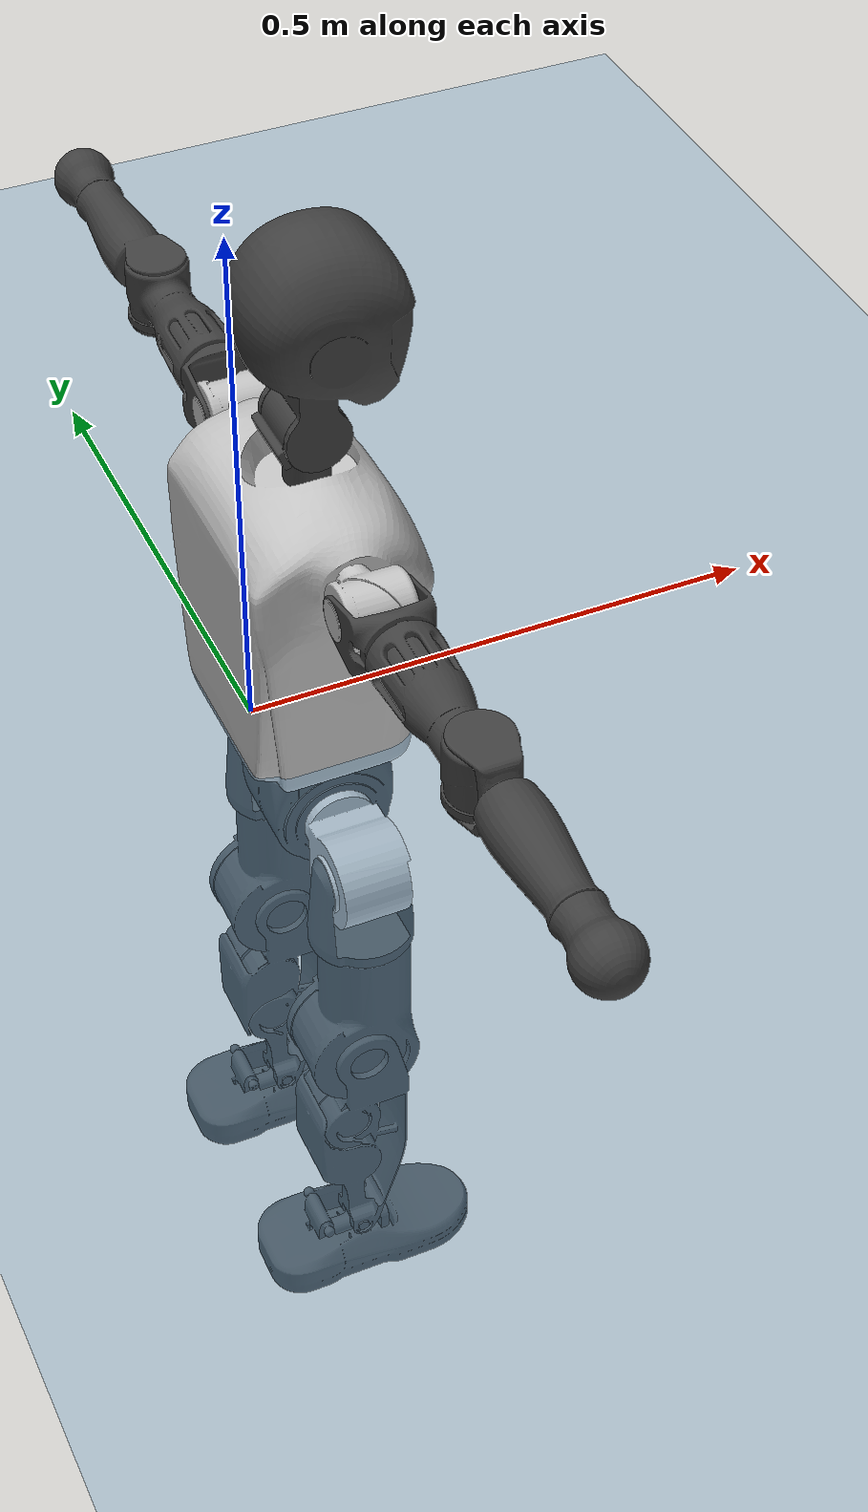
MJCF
<mujoco model="T1">
  <compiler angle="radian" assetdir="assets" balanceinertia="true" inertiafromgeom="false"/>

  <option timestep="0.005" density="1.2" viscosity="2e-05"/>

  <size nkey="1"/>

  <visual>
    <quality shadowsize="8192"/>
    <map shadowclip="0.5"/>
  </visual>

  <default>
    <default class="/">
      <joint armature="0.01" damping="0.01" frictionloss="0.1"/>
      <geom contype="0" conaffinity="0" group="1" solref="-1000 -80"/>
      <site size="0.01 0.005 0.005" group="5"/>
      <general forcelimited="true" biastype="affine" gainprm="25" biasprm="0 -25 -0.6"/>
      <default class="t1">
        <geom rgba="0.25 0.25 0.25 1"/>
        <default class="visual">
          <geom type="mesh" group="2"/>
        </default>
        <default class="collision">
          <geom group="3"/>
        </default>
        <default class="foot">
          <geom size="0.1115 0.05 0.015" type="box" condim="6" group="4" priority="1" solimp="0.015 1 0.015"/>
        </default>
        <default class="reward_collision_sphere">
          <geom group="5" rgba="1 0 0 1"/>
        </default>
      </default>
    </default>
  </default>

  <asset>
    <texture type="skybox" colorspace="auto" name="//unnamed_texture_0" builtin="gradient" rgb1="0.95 0.95 0.95" rgb2="0.95 0.95 0.95" width="100" height="600"/>
    <texture type="2d" colorspace="auto" name="texplane" builtin="checker" rgb1="0.345 0.575 0.748" rgb2="0.345 0.575 0.748" markrgb="1 1 1" width="512" height="512"/>
    <material name="MatPlane" class="/" texture="texplane" texuniform="true" texrepeat="2 2" specular="0.9"/>
    <mesh name="Trunk" class="/" file="Trunk.stl"/>
    <mesh name="H1" class="/" file="H1.stl"/>
    <mesh name="H2" class="/" file="H2.stl"/>
    <mesh name="AL1" class="/" file="AL1.stl"/>
    <mesh name="AL2" class="/" file="AL2.stl"/>
    <mesh name="AL3" class="/" file="AL3.stl"/>
    <mesh name="left_hand_link" class="/" file="left_hand_link.stl"/>
    <mesh name="AR1" class="/" file="AR1.stl"/>
    <mesh name="AR2" class="/" file="AR2.stl"/>
    <mesh name="AR3" class="/" file="AR3.stl"/>
    <mesh name="right_hand_link" class="/" file="right_hand_link.stl"/>
    <mesh name="Waist" class="/" file="Waist.stl"/>
    <mesh name="Hip_Pitch_Left" class="/" file="Hip_Pitch_Left.stl"/>
    <mesh name="Hip_Roll_Left" class="/" file="Hip_Roll_Left.stl"/>
    <mesh name="Hip_Yaw_Left" class="/" file="Hip_Yaw_Left.stl"/>
    <mesh name="Shank_Left" class="/" file="Shank_Left.stl"/>
    <mesh name="Ankle_Cross_Left" class="/" file="Ankle_Cross_Left.stl"/>
    <mesh name="left_foot_link" class="/" file="left_foot_link.stl"/>
    <mesh name="Hip_Pitch_Right" class="/" file="Hip_Pitch_Right.stl"/>
    <mesh name="Hip_Roll_Right" class="/" file="Hip_Roll_Right.stl"/>
    <mesh name="Hip_Yaw_Right" class="/" file="Hip_Yaw_Right.stl"/>
    <mesh name="Shank_Right" class="/" file="Shank_Right.stl"/>
    <mesh name="Ankle_Cross_Right" class="/" file="Ankle_Cross_Right.stl"/>
    <mesh name="right_foot_link" class="/" file="right_foot_link.stl"/>
  </asset>

  <worldbody>
    <geom name="floor" class="/" size="100 100 0.125" type="plane" group="0" material="MatPlane"/>
    <light name="toplight_shadow" class="/" pos="0 0 5" dir="0.0990148 0.0990148 -0.990148" type="directional" ambient="0.04 0.04 0.04" diffuse="0.55 0.55 0.55" specular="0.12 0.12 0.12"/>
    <light name="toplight_fill" class="/" pos="0 0 5" dir="0.0990148 0.0990148 -0.990148" type="directional" castshadow="false" ambient="0.04 0.04 0.04" diffuse="0.3 0.3 0.3" specular="0.08 0.08 0.08"/>
    <body name="trunk" childclass="t1">
      <inertial pos="0.0551365 -1.42058e-06 0.105062" quat="0.99996 1.40561e-05 -0.00899532 -1.39249e-05" mass="11.7" diaginertia="0.0915404 0.0767787 0.0556055"/>
      <joint name="//unnamed_joint_0" type="free" armature="0" damping="0" frictionloss="0"/>
      <geom name="//unnamed_geom_1" class="visual" rgba="0.76 0.76 0.76 1" mesh="Trunk"/>
      <geom name="//unnamed_geom_2" class="collision" size="0.075 0.1 0.15" pos="0.06 0 0.12" type="box"/>
      <geom name="//unnamed_geom_3" class="reward_collision_sphere" size="0.115" pos="0.06 0 0.1"/>
      <geom name="//unnamed_geom_4" class="reward_collision_sphere" size="0.015" pos="0.06 0.085 0"/>
      <geom name="//unnamed_geom_5" class="reward_collision_sphere" size="0.015" pos="0.06 -0.085 0"/>
      <geom name="//unnamed_geom_6" class="reward_collision_sphere" size="0.015" pos="0.06 0.107 0.18"/>
      <geom name="//unnamed_geom_7" class="reward_collision_sphere" size="0.015" pos="0.06 -0.107 0.18"/>
      <site name="imu" pos="0 0 0"/>
      <camera name="track" pos="0 -2 0" quat="0.707107 0.707107 0 0" mode="trackcom"/>
      <camera name="ego_camera" pos="0.122 0 0.42" quat="-0.5 -0.5 0.5 0.5"/>
      <body name="H1" pos="0.0625 0 0.243">
        <inertial pos="-0.000508 -0.001403 0.057432" quat="0.763881 -0.0132172 0.00173419 0.645219" mass="0.44391" diaginertia="0.000241549 0.00022351 0.000149941"/>
        <joint name="AAHead_yaw" pos="0 0 0" axis="0 0 1" range="-1.57 1.57"/>
        <geom name="//unnamed_geom_8" class="visual" mesh="H1"/>
        <body name="H2" pos="0 0 0.06185">
          <inertial pos="0.007802 0.001262 0.098631" quat="0.988453 0.106172 -0.0745686 -0.0782786" mass="0.631019" diaginertia="0.00203553 0.00192467 0.00172381"/>
          <joint name="Head_pitch" pos="0 0 0" axis="0 -1 0" range="-1.22 0.35"/>
          <geom name="//unnamed_geom_9" class="visual" mesh="H2"/>
          <geom name="//unnamed_geom_10" class="collision" size="0.08" pos="0.01 0 0.11"/>
          <geom name="//unnamed_geom_11" class="reward_collision_sphere" size="0.09" pos="0.02 0 0.1"/>
        </body>
      </body>
      <body name="AL1" pos="0.0575 0.1063 0.219" quat="1 0 0.000440565 0">
        <inertial pos="-0.000677 0.044974 0" quat="0.50423 0.495734 -0.50423 0.495734" mass="0.53" diaginertia="0.001367 0.00129329 0.000292711"/>
        <joint name="Left_Shoulder_Pitch" pos="0 0 0" axis="0 1 0" range="-3.31 1.22"/>
        <geom name="//unnamed_geom_12" class="visual" rgba="0.76 0.76 0.76 1" mesh="AL1"/>
        <body name="AL2" pos="0 0.047 0">
          <inertial pos="0.003862 0.037976 0" quat="0.487991 0.511727 -0.487991 0.511727" mass="0.16" diaginertia="0.000401 0.00034538 0.00017662"/>
          <joint name="Left_Shoulder_Roll" pos="0 0 0" axis="-1 0 0" range="-1.57 1.74"/>
          <geom name="//unnamed_geom_13" class="visual" mesh="AL2"/>
          <body name="AL3" pos="0.00025 0.0605 0">
            <inertial pos="0 0.085353 -9.9e-05" quat="0.70641 0.707803 0 0" mass="1.02" diaginertia="0.012869 0.012798 0.000620953"/>
            <joint name="Left_Elbow_Pitch" pos="0 0 0" axis="0 -1 0" range="-2.27 2.27"/>
            <geom name="//unnamed_geom_14" class="visual" mesh="AL3"/>
            <geom name="//unnamed_geom_15" class="collision" size="0.03 0.075" pos="0 0.05 0" quat="0.707105 0.707108 0 0" type="cylinder"/>
            <geom name="//unnamed_geom_16" class="reward_collision_sphere" size="0.036"/>
            <body name="left_hand_link" pos="0 0.1471 0">
              <inertial pos="-0.000108 0.109573 0.000591" quat="0.707866 0.706347 -5.22939e-05 -0.000214913" mass="0.327214" diaginertia="0.008159 0.00813104 0.000214962"/>
              <joint name="Left_Elbow_Yaw" pos="0 0 0" axis="0 0 1" range="-2.44 0"/>
              <geom name="//unnamed_geom_17" class="visual" mesh="left_hand_link"/>
              <geom name="//unnamed_geom_18" class="collision" size="0.03 0.0875" pos="0 0.13 0" quat="0.707105 0.707108 0 0" type="cylinder"/>
              <geom name="//unnamed_geom_19" class="reward_collision_sphere" size="0.05"/>
              <geom name="//unnamed_geom_20" class="reward_collision_sphere" size="0.035" pos="0 0.11 0"/>
              <geom name="//unnamed_geom_21" class="reward_collision_sphere" size="0.035" pos="0 0.215 0"/>
            </body>
          </body>
        </body>
      </body>
      <body name="AR1" pos="0.0575 -0.1063 0.219" quat="1 0 0.000440565 0">
        <inertial pos="-0.000677 -0.044974 0" quat="0.50423 0.495734 -0.50423 0.495734" mass="0.53" diaginertia="0.001367 0.00129329 0.000292711"/>
        <joint name="Right_Shoulder_Pitch" pos="0 0 0" axis="0 -1 0" range="-1.22 3.31"/>
        <geom name="//unnamed_geom_22" class="visual" rgba="0.76 0.76 0.76 1" mesh="AR1"/>
        <body name="AR2" pos="0 -0.047 0">
          <inertial pos="0.003862 -0.037976 0" quat="0.511727 0.487991 -0.511727 0.487991" mass="0.16" diaginertia="0.000401 0.00034538 0.00017662"/>
          <joint name="Right_Shoulder_Roll" pos="0 0 0" axis="-1 0 0" range="-1.74 1.57"/>
          <geom name="//unnamed_geom_23" class="visual" mesh="AR2"/>
          <body name="AR3" pos="0.00025 -0.0605 0">
            <inertial pos="0 -0.085353 -9.9e-05" quat="0.707803 0.70641 0 0" mass="1.02" diaginertia="0.012869 0.012798 0.000620953"/>
            <joint name="Right_Elbow_Pitch" pos="0 0 0" axis="0 1 0" range="-2.27 2.27"/>
            <geom name="//unnamed_geom_24" class="visual" mesh="AR3"/>
            <geom name="//unnamed_geom_25" class="collision" size="0.03 0.075" pos="0 -0.05 0" quat="0.707105 0.707108 0 0" type="cylinder"/>
            <geom name="//unnamed_geom_26" class="reward_collision_sphere" size="0.036"/>
            <body name="right_hand_link" pos="0 -0.1471 0">
              <inertial pos="-0.000108 -0.109573 0.000591" quat="0.706347 0.707866 0.000214913 5.22939e-05" mass="0.327214" diaginertia="0.008159 0.00813104 0.000214962"/>
              <joint name="Right_Elbow_Yaw" pos="0 0 0" axis="0 0 1" range="0 2.44"/>
              <geom name="//unnamed_geom_27" class="visual" mesh="right_hand_link"/>
              <geom name="//unnamed_geom_28" class="collision" size="0.03 0.0875" pos="0 -0.13 0" quat="0.707105 0.707108 0 0" type="cylinder"/>
              <geom name="//unnamed_geom_29" class="reward_collision_sphere" size="0.05"/>
              <geom name="//unnamed_geom_30" class="reward_collision_sphere" size="0.035" pos="0 -0.11 0"/>
              <geom name="//unnamed_geom_31" class="reward_collision_sphere" size="0.035" pos="0 -0.215 0"/>
            </body>
          </body>
        </body>
      </body>
      <body name="Waist" pos="0.0625 0 -0.1155">
        <inertial pos="0.002284 3e-06 0.007301" quat="0.983649 0.000360386 -0.180076 0.00269791" mass="2.581" diaginertia="0.00536742 0.005299 0.00474258"/>
        <joint name="Waist" pos="0 0 0" axis="0 0 1" range="-1.57 1.57"/>
        <geom name="//unnamed_geom_32" class="visual" mesh="Waist"/>
        <body name="Hip_Pitch_Left" pos="0 0.106 0">
          <inertial pos="0.000534 -0.007296 -0.018083" quat="0.975141 0.2211 0.0145808 0.0017406" mass="1.021" diaginertia="0.00180547 0.00145926 0.00125327"/>
          <joint name="Left_Hip_Pitch" pos="0 0 0" axis="0 1 0" range="-1.8 1.57"/>
          <geom name="//unnamed_geom_33" class="visual" rgba="0.76 0.76 0.76 1" mesh="Hip_Pitch_Left"/>
          <body name="Hip_Roll_Left" pos="0 0 -0.02">
            <inertial pos="0.001101 2.4e-05 -0.05375" quat="0.707081 -0.00599604 -0.00599604 0.707081" mass="0.385" diaginertia="0.001743 0.00151729 0.000514712"/>
            <joint name="Left_Hip_Roll" pos="0 0 0" axis="-1 0 0" range="-1.57 0.2"/>
            <geom name="//unnamed_geom_34" class="visual" mesh="Hip_Roll_Left"/>
            <geom name="//unnamed_geom_35" class="reward_collision_sphere" size="0.055"/>
            <body name="Hip_Yaw_Left" pos="0 0 -0.081854">
              <inertial pos="-0.007233 0.000206 -0.089184" quat="0.696808 -0.033953 -0.0315708 0.715758" mass="2.166" diaginertia="0.0257334 0.0253024 0.00259215"/>
              <joint name="Left_Hip_Yaw" pos="0 0 0" axis="0 0 -1" range="-1 1"/>
              <geom name="//unnamed_geom_36" class="visual" mesh="Hip_Yaw_Left"/>
              <geom name="//unnamed_geom_37" class="collision" size="0.05 0.08" type="cylinder"/>
              <body name="Shank_Left" pos="-0.014 0 -0.134">
                <inertial pos="-0.006012 0.000259 -0.124318" quat="0.997573 0.00144024 -0.023949 0.0653706" mass="1.73" diaginertia="0.0346951 0.0345375 0.00185844"/>
                <joint name="Left_Knee_Pitch" pos="0 0 0" axis="0 1 0" range="0 2.34"/>
                <geom name="//unnamed_geom_38" class="visual" mesh="Shank_Left"/>
                <geom name="//unnamed_geom_39" class="collision" size="0.05 0.075" pos="0 0 -0.12" type="cylinder"/>
                <geom name="//unnamed_geom_40" class="reward_collision_sphere" size="0.065"/>
                <body name="Ankle_Cross_Left" pos="0 0 -0.28">
                  <inertial pos="-0.003722 0 -0.007981" quat="0.443136 0.551027 0.551027 0.443136" mass="0.073" diaginertia="2.9e-05 2.56589e-05 1.13411e-05"/>
                  <joint name="Left_Ankle_Pitch" pos="0 0 0" axis="0 1 0" range="-0.87 0.35"/>
                  <geom name="//unnamed_geom_41" class="visual" mesh="Ankle_Cross_Left"/>
                  <body name="left_foot_link" pos="0 0.00025 -0.012">
                    <inertial pos="-0.000249 0 -0.00914" quat="0 0.620755 0 0.784005" mass="0.685" diaginertia="0.00269786 0.002385 0.00218714"/>
                    <joint name="Left_Ankle_Roll" pos="0 0 0" axis="-1 0 0" range="-0.44 0.44"/>
                    <geom name="//unnamed_geom_42" class="visual" mesh="left_foot_link"/>
                    <geom name="left_foot" class="foot" pos="0.01 0 -0.015"/>
                    <geom name="//unnamed_geom_44" class="reward_collision_sphere" size="0.052" pos="0.01 0 -0.015"/>
                    <geom name="//unnamed_geom_45" class="reward_collision_sphere" size="0.03" pos="0.095 -0.023 -0.015"/>
                    <geom name="//unnamed_geom_46" class="reward_collision_sphere" size="0.03" pos="-0.07 -0.023 -0.015"/>
                    <site name="left_foot" class="foot" pos="0.01 0 -0.015"/>
                  </body>
                </body>
              </body>
            </body>
          </body>
        </body>
        <body name="Hip_Pitch_Right" pos="0 -0.106 0">
          <inertial pos="0.000534 0.007514 -0.018082" quat="0.973446 -0.228403 0.0147148 -0.00419349" mass="1.021" diaginertia="0.00180552 0.0014632 0.00124928"/>
          <joint name="Right_Hip_Pitch" pos="0 0 0" axis="0 -1 0" range="-1.57 1.8"/>
          <geom name="//unnamed_geom_47" class="visual" rgba="0.76 0.76 0.76 1" mesh="Hip_Pitch_Right"/>
          <body name="Hip_Roll_Right" pos="0 0 -0.02">
            <inertial pos="0.001099 2.4e-05 -0.053748" quat="0.707081 -0.00599604 -0.00599604 0.707081" mass="0.385" diaginertia="0.001743 0.00151729 0.000514712"/>
            <joint name="Right_Hip_Roll" pos="0 0 0" axis="-1 0 0" range="-0.2 1.57"/>
            <geom name="//unnamed_geom_48" class="visual" mesh="Hip_Roll_Right"/>
            <geom name="//unnamed_geom_49" class="reward_collision_sphere" size="0.055"/>
            <body name="Hip_Yaw_Right" pos="0 0 -0.081854">
              <inertial pos="-0.007191 -0.000149 -0.08922" quat="0.714468 -0.0315638 -0.0336391 0.698146" mass="2.17" diaginertia="0.0257623 0.0253298 0.00259389"/>
              <joint name="Right_Hip_Yaw" pos="0 0 0" axis="0 0 -1" range="-1 1"/>
              <geom name="//unnamed_geom_50" class="visual" mesh="Hip_Yaw_Right"/>
              <geom name="//unnamed_geom_51" class="collision" size="0.05 0.08" type="cylinder"/>
              <body name="Shank_Right" pos="-0.014 0 -0.134">
                <inertial pos="-0.005741 -0.000541 -0.122602" quat="0.99926 -0.000580963 -0.023461 -0.0304754" mass="1.79" diaginertia="0.0351717 0.0349574 0.00196589"/>
                <joint name="Right_Knee_Pitch" pos="0 0 0" axis="0 -1 0" range="-2.34 0"/>
                <geom name="//unnamed_geom_52" class="visual" mesh="Shank_Right"/>
                <geom name="//unnamed_geom_53" class="collision" size="0.05 0.075" pos="0 0 -0.12" type="cylinder"/>
                <geom name="//unnamed_geom_54" class="reward_collision_sphere" size="0.065"/>
                <body name="Ankle_Cross_Right" pos="0 0 -0.28">
                  <inertial pos="-0.003722 0 -0.007981" quat="0.443136 0.551027 0.551027 0.443136" mass="0.073" diaginertia="2.9e-05 2.56589e-05 1.13411e-05"/>
                  <joint name="Right_Ankle_Pitch" pos="0 0 0" axis="0 -1 0" range="-0.35 0.87"/>
                  <geom name="//unnamed_geom_55" class="visual" mesh="Ankle_Cross_Right"/>
                  <body name="right_foot_link" pos="0 -0.00025 -0.012">
                    <inertial pos="-0.000248 0 -0.00914" quat="0 0.620755 0 0.784005" mass="0.685" diaginertia="0.00269786 0.002385 0.00218714"/>
                    <joint name="Right_Ankle_Roll" pos="0 0 0" axis="-1 0 0" range="-0.44 0.44"/>
                    <geom name="//unnamed_geom_56" class="visual" mesh="right_foot_link"/>
                    <geom name="right_foot" class="foot" pos="0.01 0 -0.015"/>
                    <geom name="//unnamed_geom_58" class="reward_collision_sphere" size="0.04"/>
                    <geom name="//unnamed_geom_59" class="reward_collision_sphere" size="0.03" pos="0.01 0 -0.015"/>
                    <geom name="//unnamed_geom_60" class="reward_collision_sphere" size="0.03" pos="0.095 0.023 -0.015"/>
                    <geom name="//unnamed_geom_61" class="reward_collision_sphere" size="0.03" pos="-0.07 0.023 -0.015"/>
                    <site name="right_foot" class="foot" pos="0.01 0 -0.015"/>
                  </body>
                </body>
              </body>
            </body>
          </body>
        </body>
      </body>
    </body>
  </worldbody>

  <contact>
    <pair class="/" geom1="floor" geom2="left_foot" name="//unnamed_contact_0"/>
    <pair class="/" geom1="floor" geom2="right_foot" name="//unnamed_contact_1"/>
  </contact>

  <actuator>
    <general name="AAHead_yaw" class="/" joint="AAHead_yaw" forcerange="-7 7"/>
    <general name="Head_pitch" class="/" joint="Head_pitch" forcerange="-7 7"/>
    <general name="Left_Shoulder_Pitch" class="/" joint="Left_Shoulder_Pitch" forcerange="-18 18"/>
    <general name="Left_Shoulder_Roll" class="/" joint="Left_Shoulder_Roll" forcerange="-18 18"/>
    <general name="Left_Elbow_Pitch" class="/" joint="Left_Elbow_Pitch" forcerange="-18 18"/>
    <general name="Left_Elbow_Yaw" class="/" joint="Left_Elbow_Yaw" forcerange="-18 18"/>
    <general name="Right_Shoulder_Pitch" class="/" joint="Right_Shoulder_Pitch" forcerange="-18 18"/>
    <general name="Right_Shoulder_Roll" class="/" joint="Right_Shoulder_Roll" forcerange="-18 18"/>
    <general name="Right_Elbow_Pitch" class="/" joint="Right_Elbow_Pitch" forcerange="-18 18"/>
    <general name="Right_Elbow_Yaw" class="/" joint="Right_Elbow_Yaw" forcerange="-18 18"/>
    <general name="Waist" class="/" joint="Waist" forcerange="-30 30"/>
    <general name="Left_Hip_Pitch" class="/" joint="Left_Hip_Pitch" forcerange="-45 45"/>
    <general name="Left_Hip_Roll" class="/" joint="Left_Hip_Roll" forcerange="-30 30"/>
    <general name="Left_Hip_Yaw" class="/" joint="Left_Hip_Yaw" forcerange="-30 30"/>
    <general name="Left_Knee_Pitch" class="/" joint="Left_Knee_Pitch" forcerange="-60 60"/>
    <general name="Left_Ankle_Pitch" class="/" joint="Left_Ankle_Pitch" forcerange="-20 20"/>
    <general name="Left_Ankle_Roll" class="/" joint="Left_Ankle_Roll" forcerange="-15 15"/>
    <general name="Right_Hip_Pitch" class="/" joint="Right_Hip_Pitch" forcerange="-45 45"/>
    <general name="Right_Hip_Roll" class="/" joint="Right_Hip_Roll" forcerange="-30 30"/>
    <general name="Right_Hip_Yaw" class="/" joint="Right_Hip_Yaw" forcerange="-30 30"/>
    <general name="Right_Knee_Pitch" class="/" joint="Right_Knee_Pitch" forcerange="-60 60"/>
    <general name="Right_Ankle_Pitch" class="/" joint="Right_Ankle_Pitch" forcerange="-20 20"/>
    <general name="Right_Ankle_Roll" class="/" joint="Right_Ankle_Roll" forcerange="-15 15"/>
  </actuator>

  <sensor>
    <gyro site="imu" name="imu_angular_velocity"/>
    <velocimeter site="imu" name="imu_linear_velocity"/>
    <framelinvel objtype="site" objname="left_foot" name="left_foot_global_linear_velocity"/>
    <framelinvel objtype="site" objname="right_foot" name="right_foot_global_linear_velocity"/>
  </sensor>

  <keyframe>
    <key name="home" qpos="0 0 0.6385 1 0 0 0 0 0 0 1.4 0 -0.4 0 -1.4 0 0.4 0 -0.4 0 0 0.8 -0.4 0 0.4 0 0 -0.8 0.4 0"/>
  </keyframe>
</mujoco>
